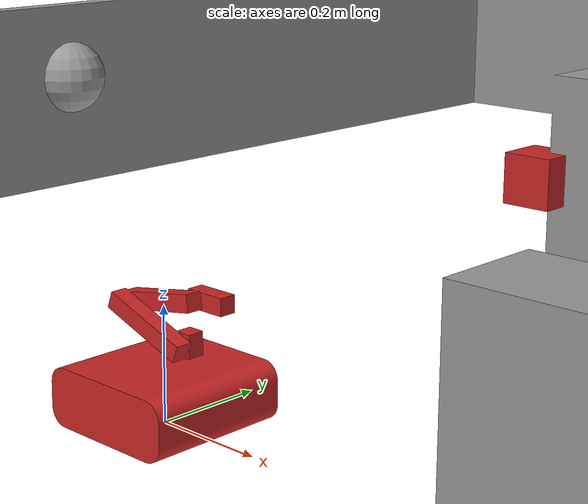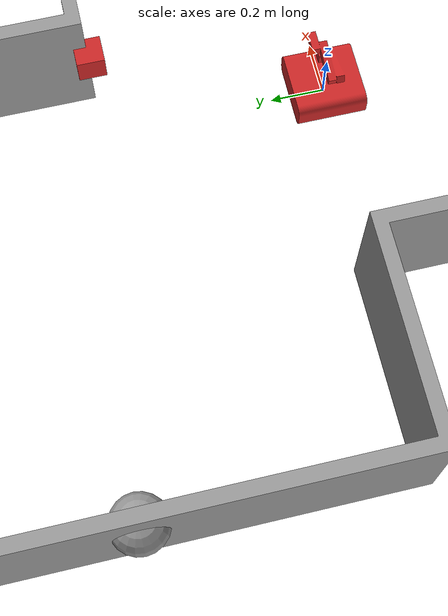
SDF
<sdf version='1.4'>
  <model name='vg12'>
    <static>1</static>

    <link name='room'>
      <collision name='body'>
        <pose>0 0 0 0 0 -1.5708</pose>
        <geometry>
          <mesh>
            <uri>/home/mtp/catkin_ws/src/eva_a/models/vg12/meshes/vg12.dae</uri>
            <scale>1.0 1.0 1.0</scale>
          </mesh>
        </geometry>
        <max_contacts>10</max_contacts>
        <surface>
          <bounce/>
          <friction>
            <ode/>
          </friction>
          <contact>
            <ode/>
          </contact>
        </surface>
      </collision>
      <visual name='body'>
        <pose>0 0 0 0 0 -1.5708</pose>
        <geometry>
          <mesh>
            <uri>/home/mtp/catkin_ws/src/eva_a/models/vg12/meshes/vg12.dae</uri>
            <scale>1.0 1.0 1.0</scale>
          </mesh>
        </geometry>
        <material>
          <script>
            <uri>file://media/materials/scripts/gazebo.material</uri>
            <name>Gazebo/Grey</name>
          </script>
        </material>
      </visual>
    </link>

    <link name='taurob'>
      <collision name='body'>
        <pose>0 0 0 0 0 0</pose>
        <geometry>
          <mesh>
            <uri>/home/mtp/catkin_ws/src/eva_a/models/vg12/meshes/taurob.dae</uri>
            <scale>1.0 1.0 1.0</scale>
          </mesh>
        </geometry>
        <max_contacts>10</max_contacts>
        <surface>
          <bounce/>
          <friction>
            <ode/>
          </friction>
          <contact>
            <ode/>
          </contact>
        </surface>
      </collision>
      <visual name='body'>
        <pose>0 0 0 0 0 0</pose>
        <geometry>
          <mesh>
            <uri>/home/mtp/catkin_ws/src/eva_a/models/vg12/meshes/taurob.dae</uri>
            <scale>1.0 1.0 1.0</scale>
          </mesh>
        </geometry>
        <material>
          <script>
            <uri>file://media/materials/scripts/gazebo.material</uri>
            <name>Gazebo/Red</name>
          </script>
        </material>
      </visual>
    </link>

    <link name='gas_cloud'>
      <visual name='visual'>
      <pose>-1.5 1.0 0.3 0 0 0</pose>
        <geometry>
          <sphere>
            <radius>0.1</radius>
          </sphere>
        </geometry>
        <material>
          <script>
            <name>Gazebo/Grey</name>
            <uri>file://media/materials/scripts/gazebo.material</uri>
          </script>
          <ambient>0.0 0.0 0.0 1</ambient>
	  <diffuse>0.0 0.0 0.0 1</diffuse>
	  <specular>0.0 0.0 0.0 1</specular>
	  <emissive>0.1 0.1 1.0 1</emissive>
        </material>
        <transparency>0.0</transparency>
      </visual>
      <self_collide>0</self_collide>
      <kinematic>0</kinematic>
      <gravity>1</gravity>
    </link>

    <link name='gas_sensor'>
      <visual name='visual'>
        <pose>0.15 0.84 0.3 0 0 0</pose>
        <geometry>
          <box>
            <size>0.1 0.1 0.1</size>
          </box>
        </geometry>
        <material>
          <script>
            <name>Gazebo/Red</name>
            <uri>file://media/materials/scripts/gazebo.material</uri>
          </script>
        </material>
      </visual>
      <self_collide>0</self_collide>
      <kinematic>0</kinematic>
      <gravity>1</gravity>
    </link>

  </model>
</sdf>
